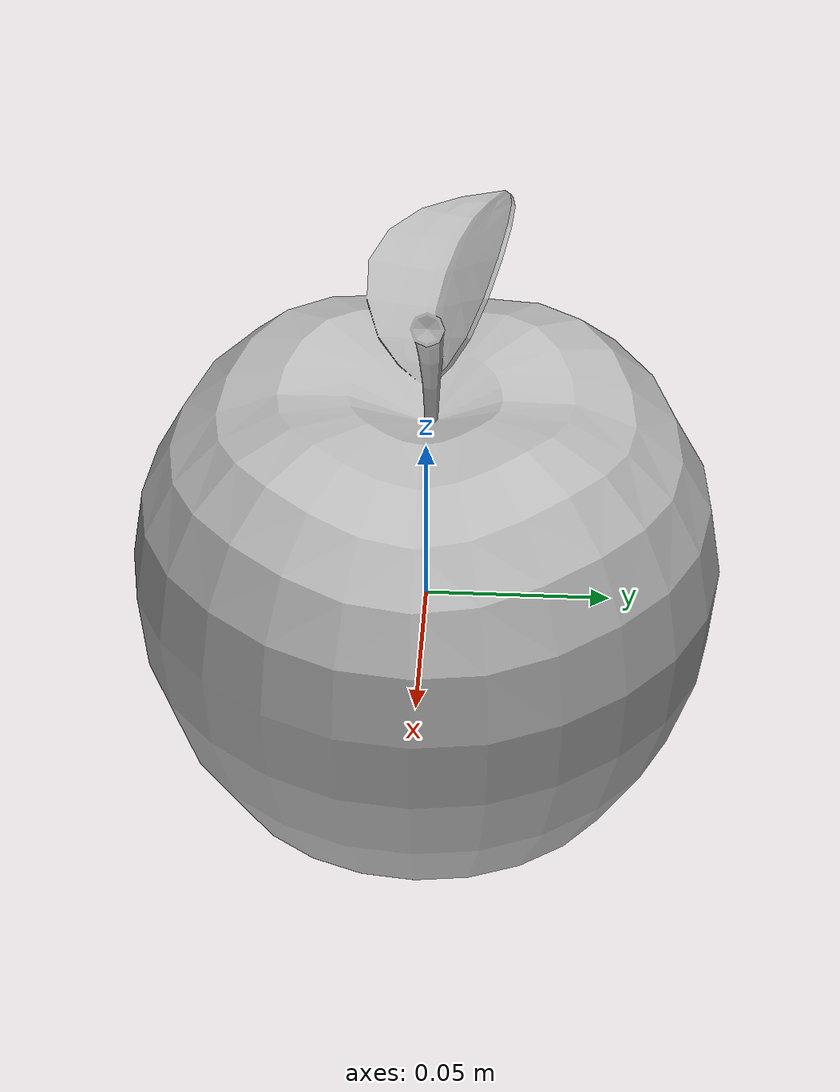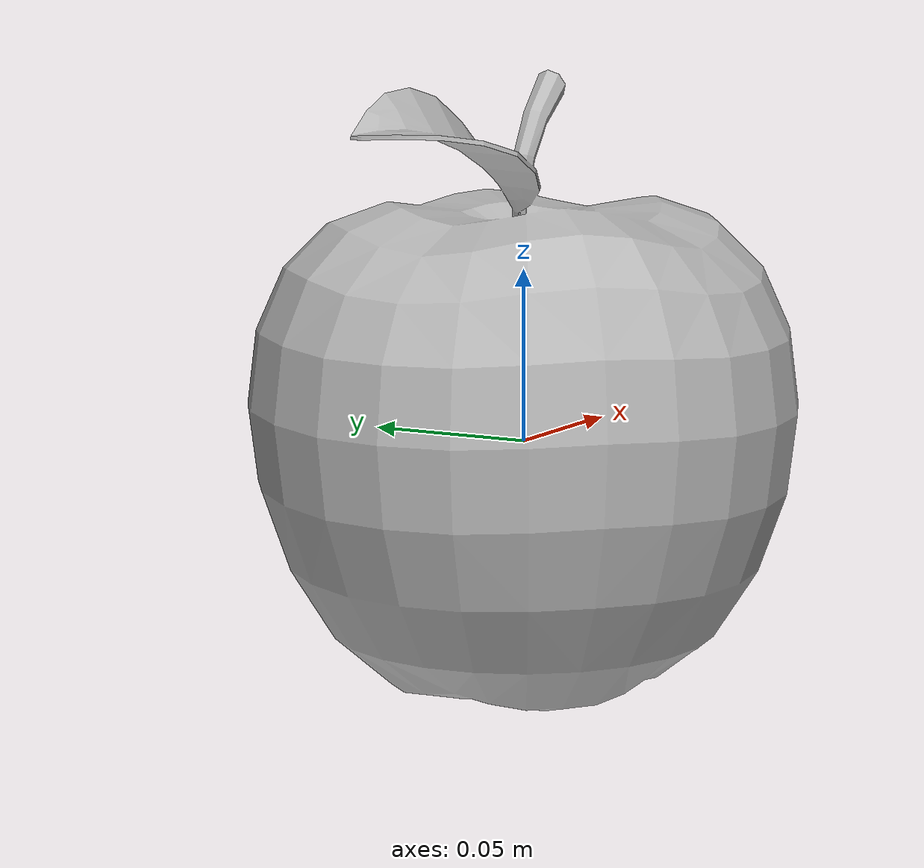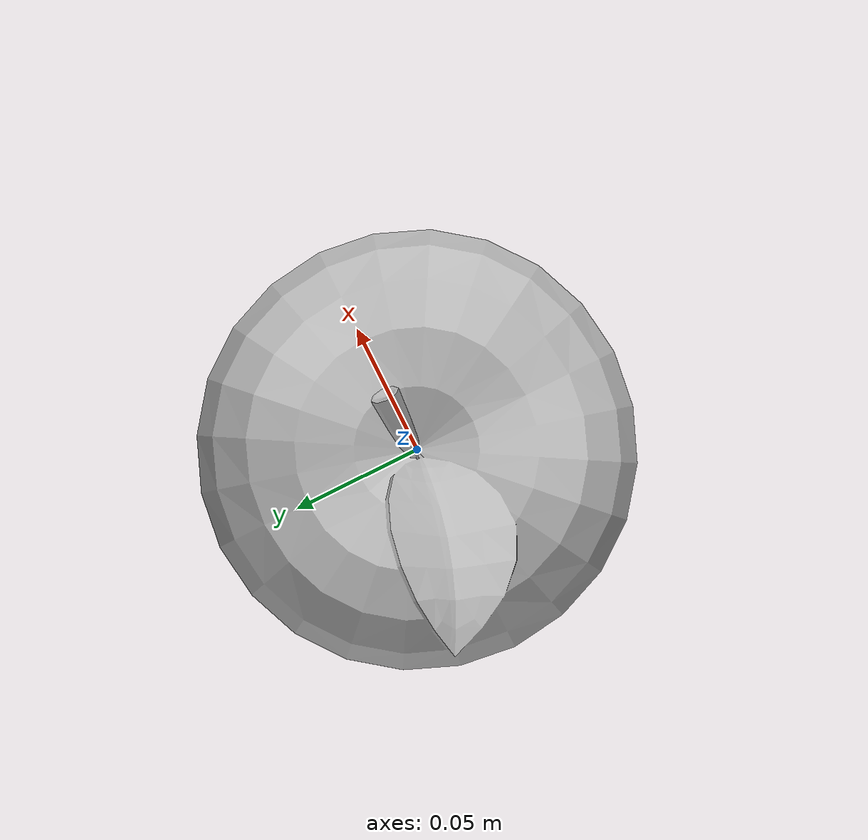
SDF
<?xml version="1.0" ?>
<sdf version="1.6">
  <model name="AppleLeaf">
    <static>true</static>
    <link name="link">
      <inertial>
        <pose>0 0 0 0 0 0</pose>
        <mass>0.002</mass>
        <inertia>
          <ixx>3.41333333333e-07</ixx>
          <ixy>0</ixy>
          <ixz>0</ixz>
          <iyy>3.41333333333e-07</iyy>
          <iyz>0</iyz>
          <izz>3.41333333333e-07</izz>
        </inertia>
      </inertial>

      <collision name="person">
        <pose>0 0 0 0 0 0</pose>
        <geometry>
          <mesh>
            <uri>model://AppleLeaf/meshes/AppleLeaf.dae</uri>
            <scale>0.002 0.002 0.002</scale>
          </mesh>

        </geometry>
        <surface>
          <friction>
            <ode>
              <mu>0.01</mu>
              <mu2>0.01</mu2>
            </ode>
          </friction>
          <contact>
            <ode>
              <kp>10000000.0</kp>
              <kd>10000000.0</kd>
              <min_depth>0.001</min_depth>
              <max_vel>1.1</max_vel>
            </ode>
          </contact>
        </surface>
      </collision>

      <visual name="visual">
        <pose>0 0 0 0 0 0</pose>
        <geometry>
          <mesh>
            <uri>model://AppleLeaf/meshes/AppleLeaf.dae</uri>
          	<scale>0.002 0.002 0.002</scale>
          </mesh>
        </geometry>
      </visual>
    </link>
  </model>
</sdf>
